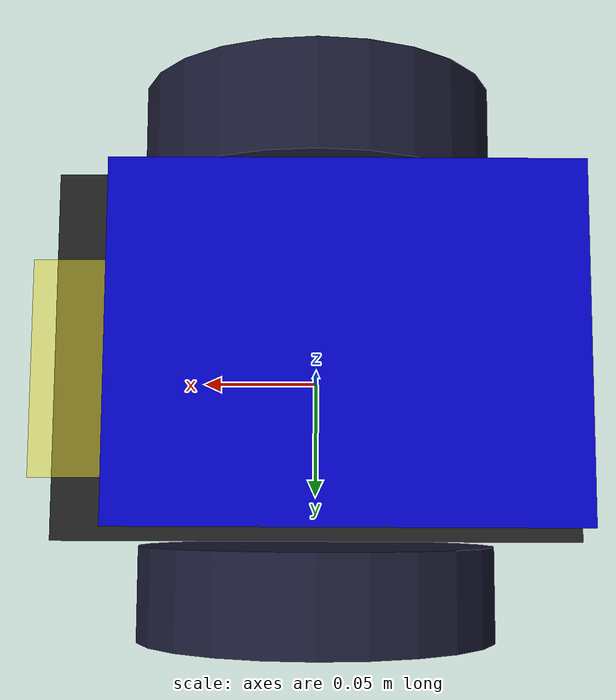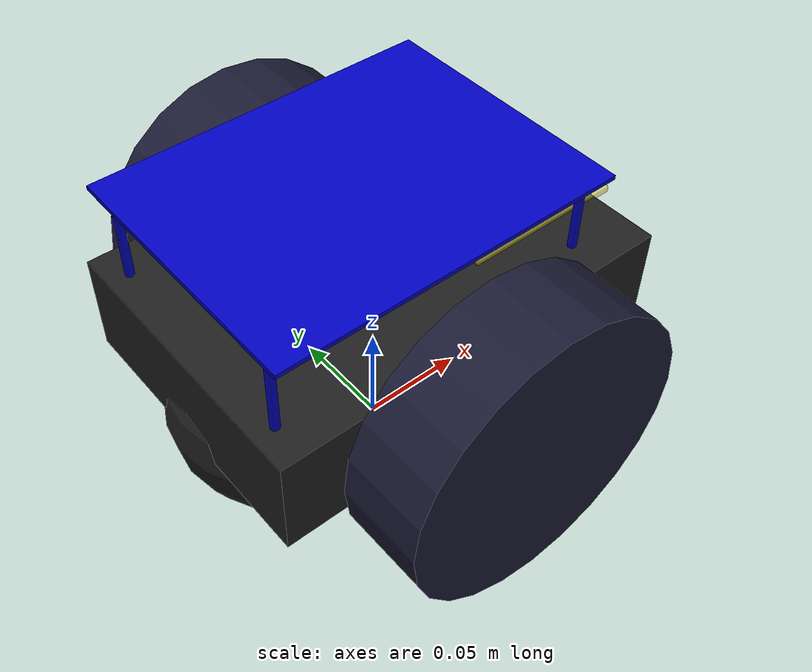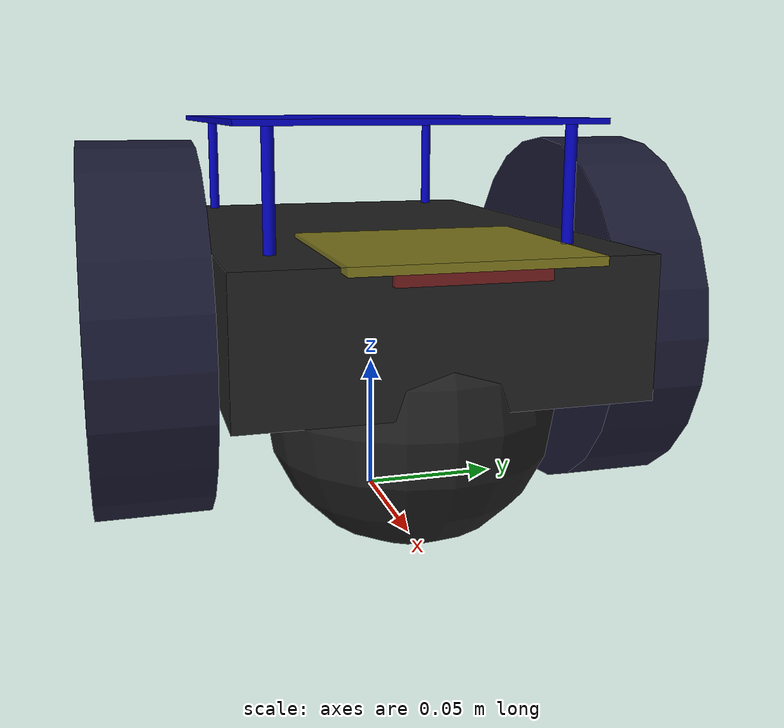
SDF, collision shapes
<?xml version="1.0"?>
<sdf version="1.5">
  <model name = "myrobot">
    <static>false</static>

    <!-- LINKS -->
    <link name="cube_base">
      <inertial>
        <mass>15</mass>
        <origin xyz="0.0 0 0" rpy=" 0 0 0"/>
        <inertia>
          <ixx>1</ixx> <ixy>0</ixy> <ixz>0</ixz>
          <iyy>1</iyy> <iyz>0</iyz>
          <izz>1</izz>
        </inertia>
      </inertial>
      <pose>0 0 0.08 0 0 0</pose>
      <collision name="collision">
        <geometry>
          <box>
            <size>0.19 0.134 0.047</size>
          </box>
        </geometry>
        <surface>
          <friction>
            <ode>
              <mu>0</mu>
              <mu2>0</mu2>
            </ode>
          </friction>
        </surface>
      </collision>
      <visual name="visual">
        <pose>0.02 0 -0.01 1.5707 0 1.5707</pose>
        <geometry>
          <mesh><uri>model://myrobot/meshes/Devastator.dae</uri></mesh>

        </geometry>

      </visual>

      <collision name = 'caster_collision'>
        <pose>-0.05 0 -0.03 0 0 0</pose>
        <geometry>
          <sphere>
            <radius>0.05</radius>
          </sphere>
        </geometry>
        <surface>
          <friction>
            <ode>
              <mu>0</mu>
              <mu2>0</mu2>
              <slip1>0.1</slip1>
              <slip2>0.1</slip2>
            </ode>
          </friction>
        </surface>
      </collision>
      <visual name='caster_collision'>
        <pose>-0.05 0 -0.03 0 0 0</pose>
        <geometry>
          <sphere>
            <radius>0.05</radius>
          </sphere>
        </geometry>
        <material>
          <script>
            <uri>file://media/materials/scripts/gazebo.material</uri>
            <name>Gazebo/Black</name>
          </script>
        </material>
      </visual>

      <collision name = 'caster_collision2'>
        <pose>0.05 0 -0.03 0 0 0</pose>
        <geometry>
          <sphere>
            <radius>0.05</radius>
          </sphere>
        </geometry>

        <surface>
          <friction>
            <ode>
              <mu>0</mu>
              <mu2>0</mu2>
              <slip1>0.1</slip1>
              <slip2>0.1</slip2>
            </ode>
          </friction>
        </surface>
      </collision>
      <visual name='caster_collision2'>
        <pose>0.05 0 -0.03 0 0 0</pose>
        <geometry>
          <sphere>
            <radius>0.05</radius>
          </sphere>
        </geometry>
        <material>
          <script>
            <uri>file://media/materials/scripts/gazebo.material</uri>
            <name>Gazebo/Black</name>
          </script>
        </material>
      </visual>
    </link>

    <link name="BaseBoards">
      <inertial>
        <mass>1</mass>
        <inertia>
          <ixx>.01</ixx> <ixy>0</ixy> <ixz>0</ixz>
          <iyy>.01</iyy> <iyz>0</iyz>
          <izz>.01</izz>
        </inertia>
      </inertial>
      <pose>-0.01 0 0.1435 0 0 0</pose>
      <collision name="collision">
        <geometry>
          <box>
            <size>0.16 0.122315 0.002</size>
          </box>
        </geometry>
        <surface>
          <friction>
            <ode>
              <mu>0</mu>
              <mu2>0</mu2>
            </ode>
          </friction>
        </surface>
      </collision>
      <visual name="visual">
        <pose>0.05 0 0 0 0 1.5707</pose>
        <geometry>
          <mesh><uri>model://test_model/meshes/BaseBoards.dae</uri></mesh>
        </geometry>
          <material>
            <ambient>0.1 0.1 0.1 1</ambient>
            <diffuse>0 0 0.75 1</diffuse>
            <specular>0 0 0 0</specular>
            <emissive>0 0 0 1</emissive>
          </material>
      </visual>

      <collision name = 'stick1_collision'>
        <pose>0.075 0.05 -0.02 0 0 0</pose>
        <geometry>
          <cylinder>
            <radius>0.002</radius>
            <length>0.04</length>
          </cylinder>
        </geometry>
        <surface>
          <friction>
            <ode>
              <mu>0</mu>
              <mu2>0</mu2>
              <slip1>0</slip1>
              <slip2>0</slip2>
            </ode>
          </friction>
        </surface>
      </collision>
      <visual name='stick1_collision'>
        <pose>0.075 0.05 -0.02 0 0 0</pose>
        <geometry>
          <cylinder>
            <radius>0.002</radius>
            <length>0.04</length>
          </cylinder>
        </geometry>
        <material>
          <script>
            <uri>file://media/materials/scripts/gazebo.material</uri>
            <name>Gazebo/Silver</name>
          </script>
        </material>
      </visual>

      <collision name = 'stick2_collision'>
        <pose>0.075 -0.05 -0.02 0 0 0</pose>
        <geometry>
          <cylinder>
            <radius>0.002</radius>
            <length>0.04</length>
          </cylinder>
        </geometry>
        <surface>
          <friction>
            <ode>
              <mu>0</mu>
              <mu2>0</mu2>
              <slip1>0</slip1>
              <slip2>0</slip2>
            </ode>
          </friction>
        </surface>
      </collision>
      <visual name='stick2_collision'>
        <pose>0.075 -0.05 -0.02 0 0 0</pose>
        <geometry>
          <cylinder>
            <radius>0.002</radius>
            <length>0.04</length>
          </cylinder>
        </geometry>
        <material>
          <script>
            <uri>file://media/materials/scripts/gazebo.material</uri>
            <name>Gazebo/Silver</name>
          </script>
        </material>
      </visual>
      <collision name = 'stick3_collision'>
        <pose>-0.075 -0.05 -0.02 0 0 0</pose>
        <geometry>
          <cylinder>
            <radius>0.002</radius>
            <length>0.04</length>
          </cylinder>
        </geometry>
        <surface>
          <friction>
            <ode>
              <mu>0</mu>
              <mu2>0</mu2>
              <slip1>0</slip1>
              <slip2>0</slip2>
            </ode>
          </friction>
        </surface>
      </collision>
      <visual name='stick3_collision'>
        <pose>-0.075 -0.05 -0.02 0 0 0</pose>
        <geometry>
          <cylinder>
            <radius>0.002</radius>
            <length>0.04</length>
          </cylinder>
        </geometry>
        <material>
          <script>
            <uri>file://media/materials/scripts/gazebo.material</uri>
            <name>Gazebo/Silver</name>
          </script>
        </material>
      </visual>

      <collision name = 'stick4_collision'>
        <pose>-0.075 0.05 -0.02 0 0 0</pose>
        <geometry>
          <cylinder>
            <radius>0.002</radius>
            <length>0.04</length>
          </cylinder>
        </geometry>
        <surface>
          <friction>
            <ode>
              <mu>0</mu>
              <mu2>0</mu2>
              <slip1>0</slip1>
              <slip2>0</slip2>
            </ode>
          </friction>
        </surface>
      </collision>
      <visual name='stick4_collision'>
        <pose>-0.075 0.05 -0.02 0 0 0</pose>
        <geometry>
          <cylinder>
            <radius>0.002</radius>
            <length>0.04</length>
          </cylinder>
        </geometry>
        <material>
          <script>
            <uri>file://media/materials/scripts/gazebo.material</uri>
            <name>Gazebo/Silver</name>
          </script>
        </material>
      </visual>
    </link>

    <link name="piastra_anteriore">
      <inertial>
        <mass>0.1</mass>
        <inertia>
          <ixx>.0001</ixx> <ixy>0</ixy> <ixz>0</ixz>
          <iyy>.0001</iyy> <iyz>0</iyz>
          <izz>.0001</izz>
        </inertia>
      </inertial>
      <pose>0.065 0.005 0.1035 0 0 0</pose>
      <collision name="collision">
        <geometry>
          <box>
            <size>0.076851 0.079320 0.003</size>
          </box>
        </geometry>
        <surface>
          <friction>
            <ode>
              <mu>0</mu>
              <mu2>0</mu2>
            </ode>
          </friction>
        </surface>
      </collision>
      <visual name="visual">
        <pose>0.02 0 0 0 0 1.5707</pose>
        <geometry>
          <mesh><uri>model://test_model/meshes/Piastra_anteriore.dae</uri></mesh>
        </geometry>
          <material>
            <script>
              <uri>file://media/materials/scripts/gazebo.material</uri>
              <name>Gazebo/YellowTransparent</name>
            </script>
          </material>
      </visual>
    </link>

    <link name='left_wheel'>
      <pose>0. 0.087 0.06825 0 1.5707 1.5707 </pose>
      <inertial>
        <mass>0.1</mass>
        <inertia>
          <ixx>0.00006771</ixx>
          <ixy>0</ixy>
          <ixz>0</ixz>
          <iyy>0.00006771</iyy>
          <iyz>0</iyz>
          <izz>0.000125</izz>
        </inertia>
      </inertial>
        <collision name='  collision'>
          <geometry>
            <cylinder>
              <radius>.06825</radius>
              <length>0.035</length>
            </cylinder>
          </geometry>
          <surface>
            <friction>
              <ode>
                <mu>0.05</mu>
                <mu2>0.05</mu2>
              </ode>
            </friction>
          </surface>
        </collision>

        <visual name='visual'>
          <geometry>
            <cylinder>
              <radius>.06825</radius>
              <length>0.04</length>
            </cylinder>
          </geometry>

          <material>
            <ambient>0.1 0.1 0.1 1</ambient>
            <diffuse>0.1 0.1 0.2 1</diffuse>
            <specular>0 0 0 0</specular>
            <emissive>0 0 0 1</emissive>
          </material>
        </visual>
    </link>

    <link name='right_wheel'>
      <pose>0. -0.087 0.06825 0 1.5707 1.5707 </pose>
      <inertial>
        <mass>0.1</mass>
        <inertia>
          <ixx>0.00006771</ixx>
          <ixy>0</ixy>
          <ixz>0</ixz>
          <iyy>0.00006771</iyy>
          <iyz>0</iyz>
          <izz>0.000125</izz>
        </inertia>
      </inertial>
        <collision name='  collision'>
          <geometry>
            <cylinder>
              <radius>.06825</radius>
              <length>0.04</length>
            </cylinder>
          </geometry>
          <surface>
            <friction>
              <ode>
                <mu>0.05</mu>
                <mu2>0.05</mu2>
              </ode>
            </friction>
          </surface>
        </collision>
        <visual name='visual'>
          <geometry>
            <cylinder>
              <radius>.06825</radius>
              <length>0.04</length>
            </cylinder>
          </geometry>
          <material>
            <ambient>0.1 0.1 0.1 1</ambient>
            <diffuse>0.1 0.1 0.2 1</diffuse>
            <specular>0 0 0 0</specular>
            <emissive>0 0 0 1</emissive>
        </material>
        </visual>
    </link>

    <link name="supporto_sg90">
      <inertial>

      </inertial>
      <pose>0.085 0.005 0.0995 0 0 0</pose>
      <collision name="collision">
        <geometry>
          <box>
            <size>0.027 0.049 0.004</size>
          </box>
        </geometry>
        <surface>
          <friction>
            <ode>
              <mu>0</mu>
              <mu2>0</mu2>
            </ode>
          </friction>
        </surface>
      </collision>
      <visual name="visual">
        <pose>-0.003 0.015 0 0 0 1.5707</pose>
        <geometry>
          <mesh><uri>model://test_model/meshes/Supporto_sg90_base.dae</uri></mesh>

        </geometry>
        <material>
          <script>
            <uri>file://media/materials/scripts/gazebo.material</uri>
            <name>Gazebo/RedTransparent</name>
          </script>
        </material>
      </visual>
    </link>

    <!-- JOINTS -->
    <joint type='revolute' name='left_wheel_hinge'>
      <pose>0 0 -0.03 0 0 0</pose>
      <child>left_wheel</child>
      <parent>cube_base</parent>
      <axis>
        <xyz>0 0 1</xyz>
      </axis>
    </joint>

    <joint type='revolute' name='right_wheel_hinge'>
      <pose>0 0 0.03 0 0 0</pose>
      <child>right_wheel</child>
      <parent>cube_base</parent>
      <axis>
        <xyz>0 0 1</xyz>
      </axis>
    </joint>

    <joint type='fixed' name='BaseBoards_joint'>
      <pose>0 0 0 0 0 0</pose>
      <child>BaseBoards</child>
      <parent>cube_base</parent>
    </joint>

    <joint type='fixed' name='piastra_anteriore_joint'>
      <pose>0 0 0 0 0 0</pose>
      <child>piastra_anteriore</child>
      <parent>cube_base</parent>
    </joint>

    <joint type='fixed' name='supporto_sg90_joint'>
      <pose>0 0 0 0 0 0</pose>
      <child>supporto_sg90</child>
      <parent>piastra_anteriore</parent>
    </joint>

    <!-- PLUGINS -->
    <plugin name="cube_moving_code" filename="libgazebo_ros_diff_drive.so">
        <commandTopic>cmd_vel</commandTopic>
        <odometryTopic>odom</odometryTopic>
        <odometryFrame>odom</odometryFrame>
        <odometrySource>world</odometrySource>
        <publishOdomTF>true</publishOdomTF>
        <robotBaseFrame>cube_base</robotBaseFrame>
        <publishWheelTF>false</publishWheelTF>
        <publishTf>true</publishTf>
        <publishWheelJointState>true</publishWheelJointState>
        <legacyMode>false</legacyMode>
        <updateRate>30</updateRate>
        <leftJoint>left_wheel_hinge</leftJoint>
        <rightJoint>right_wheel_hinge</rightJoint>
        <wheelSeparation>0.4</wheelSeparation>
        <wheelDiameter>0.2</wheelDiameter>
        <rosDebugLevel>na</rosDebugLevel>
      </plugin>
  </model>
</sdf>
